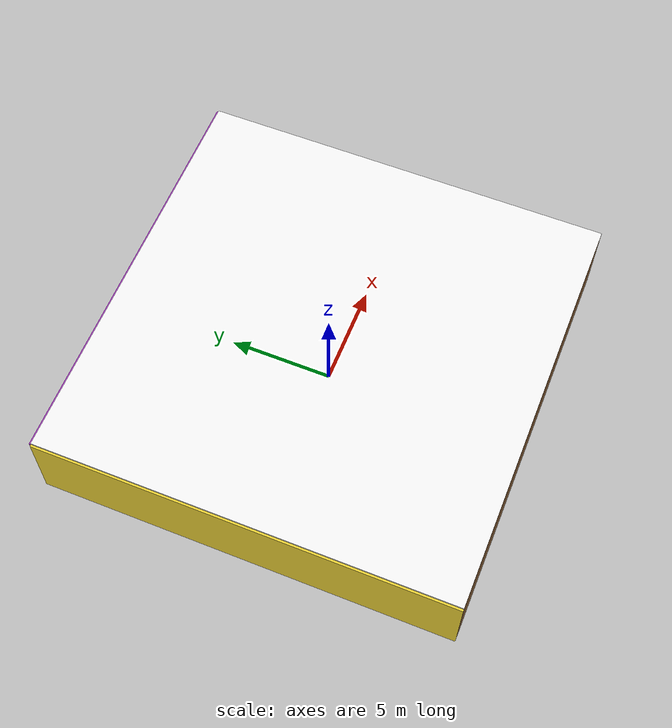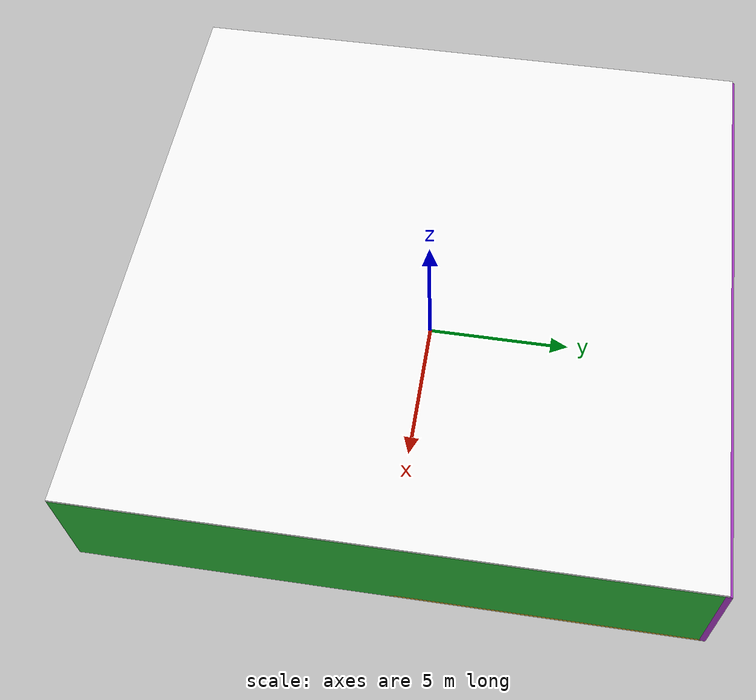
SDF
<sdf version="1.4">
 <world name="default">
  <physics type="ode">
   <max_step_size>0.001</max_step_size>
   <real_time_factor>1</real_time_factor>
   <real_time_update_rate>1000</real_time_update_rate>
   <gravity>0 0 -9.8</gravity>
  </physics>
  <scene><ambient>0.4 0.4 0.4 1</ambient><background>0.7 0.7 0.7 1</background><shadows>1</shadows></scene>
  <model name="Surrounding">
   <static>1</static>
   <link name="Ceiling">
    <collision name="Ceiling_Collision"><geometry><box><size>20 20 0.1</size></box></geometry></collision>
    <visual name="Ceiling_Visual">
     <geometry><box><size>20 20 0.1</size></box></geometry>
     <material>
      <script><uri>file://media/materials/scripts/gazebo.material</uri><name>Gazebo/WhiteGlow</name></script>
     </material>
    </visual>
    <pose>0 0 4.05 0 0 0</pose>
   </link>
   <link name="Wall_South">
    <collision name="Wall_South_Collision">
     <geometry><box><size>20 0 4</size></box></geometry>
     <pose>0 0 2 0 -0 0</pose>
    </collision>
    <visual name="Wall_South_Visual">
     <pose>0 0 2 0 -0 0</pose>
     <geometry><box><size>20 0 4</size></box></geometry>
     <material>
      <script><uri>file://media/materials/scripts/gazebo.material</uri><name>Gazebo/Wood</name></script>
     </material>
    </visual>
    <velocity_decay><linear>0</linear><angular>0</angular></velocity_decay>
    <pose>0 -10 0 0 -0 0</pose>
   </link>
   <link name="Wall_East">
    <collision name="Wall_21_Collision">
     <geometry><box><size>20 0 4</size></box></geometry>
     <pose>0 0 2 0 -0 0</pose>
    </collision>
    <visual name="Wall_21_Visual">
     <pose>0 0 2 0 -0 0</pose>
     <geometry><box><size>20 0 4</size></box></geometry>
     <material>
      <script><uri>file://media/materials/scripts/gazebo.material</uri><name>Gazebo/Green</name></script>
     </material>
    </visual>
    <velocity_decay><linear>0</linear><angular>0</angular></velocity_decay>
    <pose>10 0 0 0 -0 1.5708</pose>
   </link>
   <link name="Wall_North">
    <collision name="Wall_22_Collision">
     <geometry><box><size>20 0.2 4</size></box></geometry>
     <pose>0 0 2 0 -0 0</pose>
    </collision>
    <visual name="Wall_22_Visual">
     <pose>0 0 2 0 -0 0</pose>
     <geometry><box><size>20 0.2 4</size></box></geometry>
     <material>
      <script><uri>file://media/materials/scripts/gazebo.material</uri><name>Gazebo/PurpleGlow</name></script>
     </material>
    </visual>
    <velocity_decay><linear>0</linear><angular>0</angular></velocity_decay>
    <pose>0 10 0 0 -0 0</pose>
   </link>
   <link name="Wall_West">
    <collision name="Wall_23_Collision">
     <geometry><box><size>20 0.2 4</size></box></geometry>
     <pose>0 0 2 0 -0 0</pose>
    </collision>
    <visual name="Wall_23_Visual">
     <pose>0 0 2 0 -0 0</pose>
     <geometry><box><size>20 0.2 4</size></box></geometry>
     <material>
      <script><uri>file://media/materials/scripts/gazebo.material</uri><name>Gazebo/ZincYellow</name></script>
     </material>
    </visual>
    <velocity_decay><linear>0</linear><angular>0</angular></velocity_decay>
    <pose>-10 0 0 0 0 -1.5708</pose>
   </link>
   <link name="Ground_link">
    <collision name="collision">
     <pose>0 0 .05 0 -0 0</pose>
     <geometry><box><size>20 20 0.1</size></box></geometry>
    </collision>
    <visual name="visual">
     <pose>0 0 .05 0 -0 0</pose>
     <geometry><box><size>20 20 0.1</size></box></geometry>
     <material>
      <script><uri>file://media/materials/scripts/gazebo.material</uri><name>Gazebo/Gold</name></script>
     </material>
    </visual>
   </link>
   <static>1</static>
  </model>
  <spherical_coordinates>
   <surface_model>EARTH_WGS84</surface_model>
   <latitude_deg>0</latitude_deg>
   <longitude_deg>0</longitude_deg>
   <elevation>0</elevation>
   <heading_deg>0</heading_deg>
  </spherical_coordinates>
  <light name="lightball_0" type="diffuse">
   <diffuse>0.8 0.8 0.8 1</diffuse>
   <specular>0.2 0.2 0.2 1</specular>
   <attenuation>
    <range>100</range>
    <constant>0.7</constant>
    <linear>0.01</linear>
    <quadratic>0.001</quadratic>
   </attenuation>
   <direction>-0.5 0.1 -0.9</direction>
   <pose>9.86672989679 9.9192576916 2.0642183603 0 0 0</pose>
  </light>
  <light name="lightball_1" type="diffuse">
   <diffuse>0.8 0.8 0.8 1</diffuse>
   <specular>0.2 0.2 0.2 1</specular>
   <attenuation>
    <range>100</range>
    <constant>0.7</constant>
    <linear>0.01</linear>
    <quadratic>0.001</quadratic>
   </attenuation>
   <direction>-0.5 0.1 -0.9</direction>
   <pose>-2.16037850053 5.97232922842 1.11414772882 0 0 0</pose>
  </light>
  <include>
   <uri>model://construction_cone</uri>
   <pose>-6.69283402894 -3.3284838068 0 0 0 2.78053260041</pose>
  </include>
  <include><uri>model://table</uri><pose>-6.85996678937 8.08056559873 0 0 0 0.983456603942</pose></include>
  <include>
   <uri>model://construction_cone</uri>
   <pose>-3.94321500402 -6.86649093893 0 0 0 2.79664914767</pose>
  </include>
  <include><uri>model://cabinet</uri><pose>0.904212927686 -0.623409217479 0 0 0 0.33979500085</pose></include>
  <include><uri>model://table</uri><pose>1.56508292211 8.41991573646 0 0 0 2.22672644004</pose></include>
  <include><uri>model://table</uri><pose>4.33940302089 -2.50532157099 0 0 0 0.721880073398</pose></include>
  <include><uri>model://cabinet</uri><pose>4.7724250413 0.568711497339 0 0 0 0.197175889615</pose></include>
  <include><uri>model://cabinet</uri><pose>7.09250245414 -8.09783226255 0 0 0 0.661709765522</pose></include>
 </world>
</sdf>

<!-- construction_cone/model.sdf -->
<sdf version="1.5">
  <model name="Construction Cone">
    <link name="link">
      <collision name="collision">
        <geometry>
          <mesh>
            <scale>10 10 10</scale>
            <uri>file://isr-testbed/construction_cone/meshes/construction_cone.dae</uri>
          </mesh>
        </geometry>
      </collision>
      <visual name="visual">
        <geometry>
          <mesh>
            <scale>10 10 10</scale>
            <uri>file://isr-testbed/construction_cone/meshes/construction_cone.dae</uri>
          </mesh>
        </geometry>
      </visual>
    </link>
  </model>
</sdf>

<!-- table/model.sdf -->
<sdf version="1.5">
  <model name="table">
    <static>true</static>
    <link name="link">
      <collision name="surface">
        <pose>0 0 1.0 0 0 0</pose>
        <geometry>
          <box>
            <size>1.5 0.8 0.03</size>
          </box>
        </geometry>
        <surface>
          <friction>
            <ode>
              <mu>0.6</mu>
              <mu2>0.6</mu2>
            </ode>
          </friction>
        </surface>
      </collision>
      <visual name="visual1">
        <pose>0 0 1.0 0 0 0</pose>
        <geometry>
          <box>
            <size>1.5 0.8 0.03</size>
          </box>
        </geometry>
        <material>
          <script>
            <uri>model://media/materials/scripts/gazebo.material</uri>
            <name>Gazebo/Wood</name>
          </script>
        </material>
      </visual>
      <collision name="front_left_leg">
        <pose>0.68 0.38 0.5 0 0 0</pose>
        <geometry>
          <cylinder>
            <radius>0.02</radius>
            <length>1.0</length>
          </cylinder>
        </geometry>
      </collision>
      <visual name="front_left_leg">
        <pose>0.68 0.38 0.5 0 0 0</pose>
        <geometry>
          <cylinder>
            <radius>0.02</radius>
            <length>1.0</length>
          </cylinder>
        </geometry>
        <material>
          <script>
            <uri>model://media/materials/scripts/gazebo.material</uri>
            <name>Gazebo/Grey</name>
          </script>
        </material>
      </visual>
      <collision name="front_right_leg">
        <pose>0.68 -0.38 0.5 0 0 0</pose>
        <geometry>
          <cylinder>
            <radius>0.02</radius>
            <length>1.0</length>
          </cylinder>
        </geometry>
      </collision>
      <visual name="front_right_leg">
        <pose>0.68 -0.38 0.5 0 0 0</pose>
        <geometry>
          <cylinder>
            <radius>0.02</radius>
            <length>1.0</length>
          </cylinder>
        </geometry>
        <material>
          <script>
            <uri>model://media/materials/scripts/gazebo.material</uri>
            <name>Gazebo/Grey</name>
          </script>
        </material>
      </visual>
      <collision name="back_right_leg">
        <pose>-0.68 -0.38 0.5 0 0 0</pose>
        <geometry>
          <cylinder>
            <radius>0.02</radius>
            <length>1.0</length>
          </cylinder>
        </geometry>
      </collision>
      <visual name="back_right_leg">
        <pose>-0.68 -0.38 0.5 0 0 0</pose>
        <geometry>
          <cylinder>
            <radius>0.02</radius>
            <length>1.0</length>
          </cylinder>
        </geometry>
        <material>
          <script>
            <uri>model://media/materials/scripts/gazebo.material</uri>
            <name>Gazebo/Grey</name>
          </script>
        </material>
      </visual>
      <collision name="back_left_leg">
        <pose>-0.68 0.38 0.5 0 0 0</pose>
        <geometry>
          <cylinder>
            <radius>0.02</radius>
            <length>1.0</length>
          </cylinder>
        </geometry>
      </collision>
      <visual name="back_left_leg">
        <pose>-0.68 0.38 0.5 0 0 0</pose>
        <geometry>
          <cylinder>
            <radius>0.02</radius>
            <length>1.0</length>
          </cylinder>
        </geometry>
        <material>
          <script>
            <uri>model://media/materials/scripts/gazebo.material</uri>
            <name>Gazebo/Grey</name>
          </script>
        </material>
      </visual>
    </link>
  </model>
</sdf>

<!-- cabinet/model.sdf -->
<sdf version="1.5">
  <model name="cabinet">
    <static>true</static>
    <link name="cabinet_bottom_plate">
      <inertial>
        <pose>0 0 -1 0 0 0</pose>
        <inertia>
          <ixx>2.050000</ixx>
          <ixy>0</ixy>
          <ixz>0</ixz>
          <iyy>2.050000</iyy>
          <iyz>0</iyz>
          <izz>2.050000</izz>
        </inertia>
        <mass>25.000000</mass>
      </inertial>
      <collision name="cabinet_bottom_plate_geom">
        <pose>0 0 0.010000 0 0 0</pose>
        <geometry>
          <box>
            <size>0.450000 0.450000 0.020000</size>
          </box>
        </geometry>
      </collision>
      <visual name="cabinet_bottom_plate_geom_visual">
        <pose>0 0 0.010000 0 0 0</pose>
        <geometry>
          <box>
            <size>0.450000 0.450000 0.020000</size>
          </box>
        </geometry>
        <material>
          <script>
            <uri>model://media/materials/scripts/gazebo.material</uri>
            <name>Gazebo/Wood</name>
          </script>
        </material>
      </visual>
      <collision name="cabinet_bottom_plate_geom_cabinet_back_plate">
        <pose>0.235000 0 0.510000 0 0 0</pose>
        <geometry>
          <box>
            <size>0.020000 0.450000 1.020000</size>
          </box>
        </geometry>
      </collision>
      <visual name="cabinet_bottom_plate_geom_cabinet_back_plate_visual">
        <pose>0.235000 0 0.510000 0 0 0</pose>
        <geometry>
          <box>
            <size>0.020000 0.450000 1.020000</size>
          </box>
        </geometry>
        <material>
          <script>
            <uri>model://media/materials/scripts/gazebo.material</uri>
            <name>Gazebo/Wood</name>
          </script>
        </material>
      </visual>
      <collision name="cabinet_bottom_plate_geom_cabinet_left_plate">
        <pose>0 0.235000 0.510000 0 0 0</pose>
        <geometry>
          <box>
            <size>0.450000 0.020000 1.020000</size>
          </box>
        </geometry>
      </collision>
      <visual name="cabinet_bottom_plate_geom_cabinet_left_plate_visual">
        <pose>0 0.235000 0.510000 0 0 0</pose>
        <geometry>
          <box>
            <size>0.450000 0.020000 1.020000</size>
          </box>
        </geometry>
        <material>
          <script>
            <uri>model://media/materials/scripts/gazebo.material</uri>
            <name>Gazebo/Wood</name>
          </script>
        </material>
      </visual>
      <collision name="cabinet_bottom_plate_geom_cabinet_middle_plate">
        <pose>0 0 0.510000 0 0 0</pose>
        <geometry>
          <box>
            <size>0.450000 0.450000 0.020000</size>
          </box>
        </geometry>
      </collision>
      <visual name="cabinet_bottom_plate_geom_cabinet_middle_plate_visual">
        <pose>0 0 0.510000 0 0 0</pose>
        <geometry>
          <box>
            <size>0.450000 0.450000 0.020000</size>
          </box>
        </geometry>
        <material>
          <script>
            <uri>model://media/materials/scripts/gazebo.material</uri>
            <name>Gazebo/Wood</name>
          </script>
        </material>
      </visual>
      <collision name="cabinet_bottom_plate_geom_cabinet_right_plate">
        <pose>0 -0.235000 0.510000 0 0 0</pose>
        <geometry>
          <box>
            <size>0.450000 0.020000 1.020000</size>
          </box>
        </geometry>
      </collision>
      <visual name="cabinet_bottom_plate_geom_cabinet_right_plate_visual">
        <pose>0 -0.235000 0.510000 0 0 0</pose>
        <geometry>
          <box>
            <size>0.450000 0.020000 1.020000</size>
          </box>
        </geometry>
        <material>
          <script>
            <uri>model://media/materials/scripts/gazebo.material</uri>
            <name>Gazebo/Wood</name>
          </script>
        </material>
      </visual>
      <collision name="cabinet_bottom_plate_geom_cabinet_top_plate">
        <pose>0 0 1.010000 0 0 0</pose>
        <geometry>
          <box>
            <size>0.450000 0.450000 0.020000</size>
          </box>
        </geometry>
      </collision>
      <visual name="cabinet_bottom_plate_geom_cabinet_top_plate_visual">
        <pose>0 0 1.010000 0 0 0</pose>
        <geometry>
          <box>
            <size>0.450000 0.450000 0.020000</size>
          </box>
        </geometry>
        <material>
          <script>
            <uri>model://media/materials/scripts/gazebo.material</uri>
            <name>Gazebo/Wood</name>
          </script>
        </material>
      </visual>
    </link>
  </model>
</sdf>
